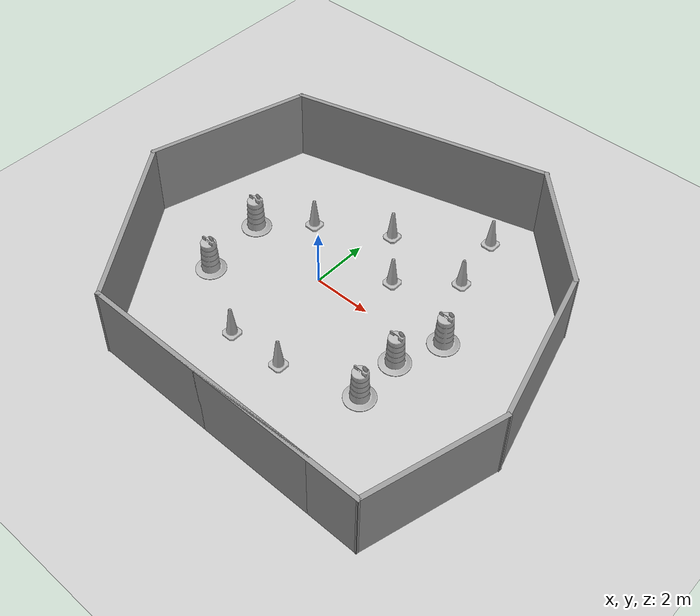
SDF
<sdf version="1.7">
 <world name="default">
  <light name="sun" type="directional">
   <pose>0 0 10 0 -0 0</pose>
   <diffuse>0.8 0.8 0.8 1</diffuse>
   <specular>0.2 0.2 0.2 1</specular>
   <attenuation>
    <range>1000</range>
    <constant>0.9</constant>
    <linear>0.01</linear>
    <quadratic>0.001</quadratic>
   </attenuation>
   <direction>-0.5 0.1 -0.9</direction>
   <spot><inner_angle>0</inner_angle><outer_angle>0</outer_angle><falloff>0</falloff></spot>
  </light>
  <model name="ground_plane">
   <static>1</static>
   <link name="link">
    <collision name="collision">
     <geometry><plane><normal>0 0 1</normal><size>100 100</size></plane></geometry>
     <surface><friction><ode><mu>100</mu><mu2>50</mu2></ode></friction></surface>
    </collision>
    <visual name="visual">
     <cast_shadows>0</cast_shadows>
     <geometry><plane><normal>0 0 1</normal><size>100 100</size></plane></geometry>
     <material>
      <script><uri>file://media/materials/scripts/gazebo.material</uri><name>Gazebo/Grey</name></script>
     </material>
    </visual>
   </link>
  </model>
  <gravity>0 0 -9.8</gravity>
  <magnetic_field>6e-06 2.3e-05 -4.2e-05</magnetic_field>
  <atmosphere type="adiabatic"/>
  <physics type="ode">
   <max_step_size>0.001</max_step_size>
   <real_time_factor>1</real_time_factor>
   <real_time_update_rate>1000</real_time_update_rate>
  </physics>
  <scene><ambient>0.4 0.4 0.4 1</ambient><background>0.7 0.7 0.7 1</background><shadows>1</shadows></scene>
  <audio><device>default</device></audio>
  <spherical_coordinates>
   <surface_model>EARTH_WGS84</surface_model>
   <latitude_deg>0</latitude_deg>
   <longitude_deg>0</longitude_deg>
   <elevation>0</elevation>
   <heading_deg>0</heading_deg>
  </spherical_coordinates>
  <model name="box_course">
   <pose>1.08099 0.13884 0 0 -0 0</pose>
   <link name="Wall_20">
    <collision name="Wall_20_Collision">
     <geometry><box><size>8.25 0.15 2.5</size></box></geometry>
     <pose>0 0 1.25 0 -0 0</pose>
    </collision>
    <visual name="Wall_20_Visual">
     <pose>0 0 1.25 0 -0 0</pose>
     <geometry><box><size>8.25 0.15 2.5</size></box></geometry>
     <material>
      <script><uri>file://media/materials/scripts/gazebo.material</uri><name>Gazebo/Grey</name></script>
      <ambient>1 1 1 1</ambient>
     </material>
     <meta><layer>0</layer></meta>
    </visual>
    <pose>0.333308 -6.43266 0 0 -0 3.14159</pose>
   </link>
   <link name="Wall_21">
    <collision name="Wall_21_Collision">
     <geometry><box><size>10 0.15 2.5</size></box></geometry>
     <pose>0 0 1.25 0 -0 0</pose>
    </collision>
    <visual name="Wall_21_Visual">
     <pose>0 0 1.25 0 -0 0</pose>
     <geometry><box><size>10 0.15 2.5</size></box></geometry>
     <material>
      <script><uri>file://media/materials/scripts/gazebo.material</uri><name>Gazebo/Grey</name></script>
      <ambient>1 1 1 1</ambient>
     </material>
     <meta><layer>0</layer></meta>
    </visual>
    <pose>1.20831 -6.43266 0 0 -0 0</pose>
   </link>
   <link name="Wall_22">
    <collision name="Wall_22_Collision">
     <geometry><box><size>4.75 0.15 2.5</size></box></geometry>
     <pose>0 0 1.25 0 -0 0</pose>
    </collision>
    <visual name="Wall_22_Visual">
     <pose>0 0 1.25 0 -0 0</pose>
     <geometry><box><size>4.75 0.15 2.5</size></box></geometry>
     <material>
      <script><uri>file://media/materials/scripts/gazebo.material</uri><name>Gazebo/Grey</name></script>
      <ambient>1 1 1 1</ambient>
     </material>
     <meta><layer>0</layer></meta>
    </visual>
    <pose>6.72859 -4.21103 0 0 -0 1.309</pose>
   </link>
   <link name="Wall_23">
    <collision name="Wall_23_Collision">
     <geometry><box><size>5.5 0.15 2.5</size></box></geometry>
     <pose>0 0 1.25 0 -0 0</pose>
    </collision>
    <visual name="Wall_23_Visual">
     <pose>0 0 1.25 0 -0 0</pose>
     <geometry><box><size>5.5 0.15 2.5</size></box></geometry>
     <material>
      <script><uri>file://media/materials/scripts/gazebo.material</uri><name>Gazebo/Grey</name></script>
      <ambient>1 1 1 1</ambient>
     </material>
     <meta><layer>0</layer></meta>
    </visual>
    <pose>6.63154 0.594452 0 0 -0 1.8326</pose>
   </link>
   <link name="Wall_24">
    <collision name="Wall_24_Collision">
     <geometry><box><size>4.75 0.15 2.5</size></box></geometry>
     <pose>0 0 1.25 0 -0 0</pose>
    </collision>
    <visual name="Wall_24_Visual">
     <pose>0 0 1.25 0 -0 0</pose>
     <geometry><box><size>4.75 0.15 2.5</size></box></geometry>
     <material>
      <script><uri>file://media/materials/scripts/gazebo.material</uri><name>Gazebo/Grey</name></script>
      <ambient>1 1 1 1</ambient>
     </material>
     <meta><layer>0</layer></meta>
    </visual>
    <pose>4.31285 4.80465 0 0 -0 2.35619</pose>
   </link>
   <link name="Wall_25">
    <collision name="Wall_25_Collision">
     <geometry><box><size>9 0.15 2.5</size></box></geometry>
     <pose>0 0 1.25 0 -0 0</pose>
    </collision>
    <visual name="Wall_25_Visual">
     <pose>0 0 1.25 0 -0 0</pose>
     <geometry><box><size>9 0.15 2.5</size></box></geometry>
     <material>
      <script><uri>file://media/materials/scripts/gazebo.material</uri><name>Gazebo/Grey</name></script>
      <ambient>1 1 1 1</ambient>
     </material>
     <meta><layer>0</layer></meta>
    </visual>
    <pose>-1.58772 5.28572 0 0 -0 -2.87979</pose>
   </link>
   <link name="Wall_26">
    <collision name="Wall_26_Collision">
     <geometry><box><size>5.75 0.15 2.5</size></box></geometry>
     <pose>0 0 1.25 0 -0 0</pose>
    </collision>
    <visual name="Wall_26_Visual">
     <pose>0 0 1.25 0 -0 0</pose>
     <geometry><box><size>5.75 0.15 2.5</size></box></geometry>
     <material>
      <script><uri>file://media/materials/scripts/gazebo.material</uri><name>Gazebo/Grey</name></script>
      <ambient>1 1 1 1</ambient>
     </material>
     <meta><layer>0</layer></meta>
    </visual>
    <pose>-6.58663 1.43585 0 0 -0 -1.8326</pose>
   </link>
   <link name="Wall_27">
    <collision name="Wall_27_Collision">
     <geometry><box><size>6.44186 0.15 2.5</size></box></geometry>
     <pose>0 0 1.25 0 -0 0</pose>
    </collision>
    <visual name="Wall_27_Visual">
     <pose>0 0 1.25 0 -0 0</pose>
     <geometry><box><size>6.44186 0.15 2.5</size></box></geometry>
     <material>
      <script><uri>file://media/materials/scripts/gazebo.material</uri><name>Gazebo/Grey</name></script>
      <ambient>1 1 1 1</ambient>
     </material>
     <meta><layer>0</layer></meta>
    </visual>
    <pose>-5.51401 -3.8507 0 0 -0 -0.962689</pose>
   </link>
   <static>1</static>
  </model>
  <model name="Construction Cone">
   <link name="link">
    <collision name="collision">
     <geometry>
      <mesh><scale>10 10 10</scale><uri>model://construction_cone/meshes/construction_cone.dae</uri></mesh>
     </geometry>
    </collision>
    <visual name="visual">
     <geometry>
      <mesh><scale>10 10 10</scale><uri>model://construction_cone/meshes/construction_cone.dae</uri></mesh>
     </geometry>
    </visual>
    <inertial>
     <inertia><ixx>1</ixx><ixy>0</ixy><ixz>0</ixz><iyy>1</iyy><iyz>0</iyz><izz>1</izz></inertia>
     <mass>1</mass>
    </inertial>
   </link>
   <pose>1.48432 -3.32535 -0 0 -0 0</pose>
  </model>
  <model name="Construction Barrel">
   <link name="link">
    <inertial>
     <pose>0 0 0.4 0 -0 0</pose>
     <mass>500</mass>
     <inertia><ixx>51.2096</ixx><iyy>51.2096</iyy><izz>25</izz><ixy>0</ixy><ixz>0</ixz><iyz>0</iyz></inertia>
    </inertial>
    <collision name="collision">
     <geometry><mesh><uri>model://construction_barrel/meshes/construction_barrel.dae</uri></mesh></geometry>
    </collision>
    <visual name="visual">
     <geometry><mesh><uri>model://construction_barrel/meshes/construction_barrel.dae</uri></mesh></geometry>
    </visual>
   </link>
   <pose>4.03909 -2.58871 -0 0 0 -1.8e-05</pose>
  </model>
  <model name="Construction Barrel_0">
   <link name="link">
    <inertial>
     <pose>0 0 0.4 0 -0 0</pose>
     <mass>500</mass>
     <inertia><ixx>51.2096</ixx><iyy>51.2096</iyy><izz>25</izz><ixy>0</ixy><ixz>0</ixz><iyz>0</iyz></inertia>
    </inertial>
    <collision name="collision">
     <geometry><mesh><uri>model://construction_barrel/meshes/construction_barrel.dae</uri></mesh></geometry>
    </collision>
    <visual name="visual">
     <geometry><mesh><uri>model://construction_barrel/meshes/construction_barrel.dae</uri></mesh></geometry>
    </visual>
   </link>
   <pose>3.964 -0.93071 -2e-06 8e-06 -4e-06 -1.7e-05</pose>
  </model>
  <model name="Construction Barrel_1">
   <link name="link">
    <inertial>
     <pose>0 0 0.4 0 -0 0</pose>
     <mass>500</mass>
     <inertia><ixx>51.2096</ixx><iyy>51.2096</iyy><izz>25</izz><ixy>0</ixy><ixz>0</ixz><iyz>0</iyz></inertia>
    </inertial>
    <collision name="collision">
     <geometry><mesh><uri>model://construction_barrel/meshes/construction_barrel.dae</uri></mesh></geometry>
    </collision>
    <visual name="visual">
     <geometry><mesh><uri>model://construction_barrel/meshes/construction_barrel.dae</uri></mesh></geometry>
    </visual>
   </link>
   <pose>4.55974 0.618978 -1e-06 3e-06 7e-06 -1.5e-05</pose>
  </model>
  <model name="Construction Cone_0">
   <link name="link">
    <collision name="collision">
     <geometry>
      <mesh><scale>10 10 10</scale><uri>model://construction_cone/meshes/construction_cone.dae</uri></mesh>
     </geometry>
    </collision>
    <visual name="visual">
     <geometry>
      <mesh><scale>10 10 10</scale><uri>model://construction_cone/meshes/construction_cone.dae</uri></mesh>
     </geometry>
    </visual>
    <inertial>
     <inertia><ixx>1</ixx><ixy>0</ixy><ixz>0</ixz><iyy>1</iyy><iyz>0</iyz><izz>1</izz></inertia>
     <mass>1</mass>
    </inertial>
   </link>
   <pose>-0.425767 -3.4012 -5e-06 -4e-06 1e-06 0</pose>
  </model>
  <model name="Construction Cone_1">
   <link name="link">
    <collision name="collision">
     <geometry>
      <mesh><scale>10 10 10</scale><uri>model://construction_cone/meshes/construction_cone.dae</uri></mesh>
     </geometry>
    </collision>
    <visual name="visual">
     <geometry>
      <mesh><scale>10 10 10</scale><uri>model://construction_cone/meshes/construction_cone.dae</uri></mesh>
     </geometry>
    </visual>
    <inertial>
     <inertia><ixx>1</ixx><ixy>0</ixy><ixz>0</ixz><iyy>1</iyy><iyz>0</iyz><izz>1</izz></inertia>
     <mass>1</mass>
    </inertial>
   </link>
   <pose>1.80318 1.48458 -1e-05 -1e-06 0 0</pose>
  </model>
  <model name="Construction Cone_2">
   <link name="link">
    <collision name="collision">
     <geometry>
      <mesh><scale>10 10 10</scale><uri>model://construction_cone/meshes/construction_cone.dae</uri></mesh>
     </geometry>
    </collision>
    <visual name="visual">
     <geometry>
      <mesh><scale>10 10 10</scale><uri>model://construction_cone/meshes/construction_cone.dae</uri></mesh>
     </geometry>
    </visual>
    <inertial>
     <inertia><ixx>1</ixx><ixy>0</ixy><ixz>0</ixz><iyy>1</iyy><iyz>0</iyz><izz>1</izz></inertia>
     <mass>1</mass>
    </inertial>
   </link>
   <pose>-1.82898 1.75322 -5e-06 -4e-06 1e-06 0</pose>
  </model>
  <model name="Construction Cone_3">
   <link name="link">
    <collision name="collision">
     <geometry>
      <mesh><scale>10 10 10</scale><uri>model://construction_cone/meshes/construction_cone.dae</uri></mesh>
     </geometry>
    </collision>
    <visual name="visual">
     <geometry>
      <mesh><scale>10 10 10</scale><uri>model://construction_cone/meshes/construction_cone.dae</uri></mesh>
     </geometry>
    </visual>
    <inertial>
     <inertia><ixx>1</ixx><ixy>0</ixy><ixz>0</ixz><iyy>1</iyy><iyz>0</iyz><izz>1</izz></inertia>
     <mass>1</mass>
    </inertial>
   </link>
   <pose>0.457444 3.07508 -6e-06 -4e-06 0 0</pose>
  </model>
  <model name="Construction Barrel_2">
   <link name="link">
    <inertial>
     <pose>0 0 0.4 0 -0 0</pose>
     <mass>500</mass>
     <inertia><ixx>51.2096</ixx><iyy>51.2096</iyy><izz>25</izz><ixy>0</ixy><ixz>0</ixz><iyz>0</iyz></inertia>
    </inertial>
    <collision name="collision">
     <geometry><mesh><uri>model://construction_barrel/meshes/construction_barrel.dae</uri></mesh></geometry>
    </collision>
    <visual name="visual">
     <geometry><mesh><uri>model://construction_barrel/meshes/construction_barrel.dae</uri></mesh></geometry>
    </visual>
   </link>
   <pose>-2.91435 -1.95969 -1e-06 3e-06 1e-05 -7e-06</pose>
  </model>
  <model name="Construction Barrel_3">
   <link name="link">
    <inertial>
     <pose>0 0 0.4 0 -0 0</pose>
     <mass>500</mass>
     <inertia><ixx>51.2096</ixx><iyy>51.2096</iyy><izz>25</izz><ixy>0</ixy><ixz>0</ixz><iyz>0</iyz></inertia>
    </inertial>
    <collision name="collision">
     <geometry><mesh><uri>model://construction_barrel/meshes/construction_barrel.dae</uri></mesh></geometry>
    </collision>
    <visual name="visual">
     <geometry><mesh><uri>model://construction_barrel/meshes/construction_barrel.dae</uri></mesh></geometry>
    </visual>
   </link>
   <pose>-3.21976 0.399795 1e-06 2e-06 3e-06 -6e-06</pose>
  </model>
  <model name="Construction Cone_4">
   <link name="link">
    <collision name="collision">
     <geometry>
      <mesh><scale>10 10 10</scale><uri>model://construction_cone/meshes/construction_cone.dae</uri></mesh>
     </geometry>
    </collision>
    <visual name="visual">
     <geometry>
      <mesh><scale>10 10 10</scale><uri>model://construction_cone/meshes/construction_cone.dae</uri></mesh>
     </geometry>
    </visual>
    <inertial>
     <inertia><ixx>1</ixx><ixy>0</ixy><ixz>0</ixz><iyy>1</iyy><iyz>0</iyz><izz>1</izz></inertia>
     <mass>1</mass>
    </inertial>
   </link>
   <pose>3.46406 2.93126 -0 0 -0 0</pose>
  </model>
  <model name="Construction Cone_5">
   <link name="link">
    <collision name="collision">
     <geometry>
      <mesh><scale>10 10 10</scale><uri>model://construction_cone/meshes/construction_cone.dae</uri></mesh>
     </geometry>
    </collision>
    <visual name="visual">
     <geometry>
      <mesh><scale>10 10 10</scale><uri>model://construction_cone/meshes/construction_cone.dae</uri></mesh>
     </geometry>
    </visual>
    <inertial>
     <inertia><ixx>1</ixx><ixy>0</ixy><ixz>0</ixz><iyy>1</iyy><iyz>0</iyz><izz>1</izz></inertia>
     <mass>1</mass>
    </inertial>
   </link>
   <pose>3.06978 4.98855 -0 0 -1e-06 0</pose>
  </model>
 </world>
</sdf>
